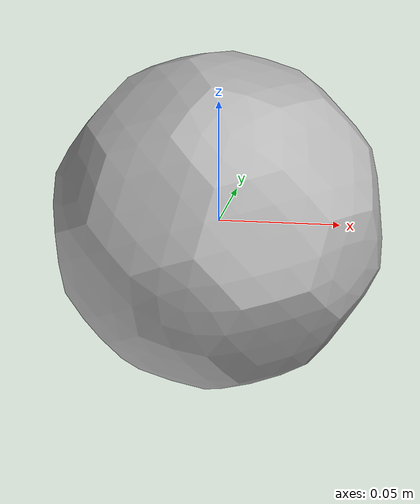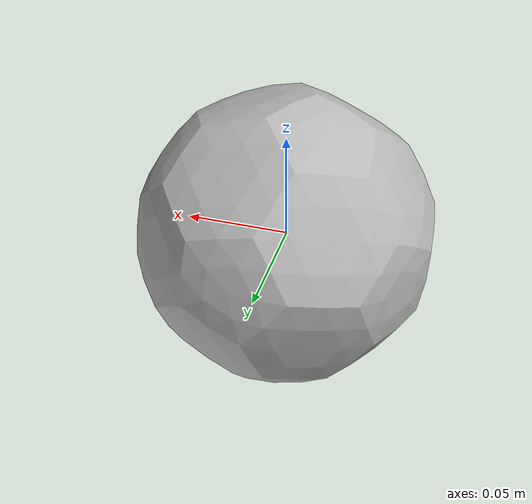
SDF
<?xml version="1.0" encoding="UTF-8"?>
<sdf version="1.7">
 <!-- mass 0.41  -->
 <!-- inertia 3.2e-03 -->
  <model name="SoccerBall">
    <static>0</static>
    <pose>0 0 0 0 -0 0</pose>
    <link name="chassis">
      <self_collide>0</self_collide>
      <inertial>
        <mass>0.3</mass>
        <inertia>
          <ixx>3.2e-03</ixx>
          <iyy>3.2e-03</iyy>
          <izz>3.2e-03</izz>
          <ixy>0</ixy>
          <ixz>0</ixz>
          <iyz>0</iyz>
        </inertia>
      </inertial>
      <collision name="collision">
        <geometry>
          <sphere>
            <radius>0.07</radius>
          </sphere>
        </geometry>
        <surface>
          <bounce>
            <restitution_coefficient>0.05</restitution_coefficient>
            <threshold>10</threshold>
          </bounce>
          <friction>
            <torsional>
              <coefficient>10.0</coefficient>
              <use_patch_radius>true</use_patch_radius>
              <patch_radius>0.05</patch_radius>
            </torsional>
            <ode>
              <mu>1</mu>
              <mu2>1</mu2>
            </ode>
          </friction>
          <contact>
            <ode>
              <max_vel>5</max_vel>
            </ode>
          </contact>
        </surface>
      </collision>
      <visual name="visual">
        <geometry>
          <mesh>
            <uri>model://SoccerBall/meshes/ball.dae</uri>
          </mesh>
        </geometry>
      </visual>
      <velocity_decay>
        <angular>0.001</angular>
      </velocity_decay>
    </link>
  </model>
</sdf>
